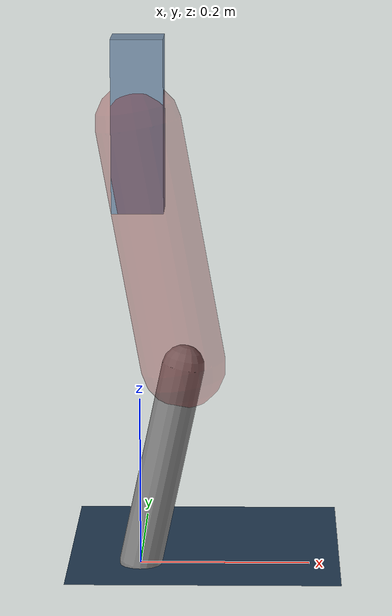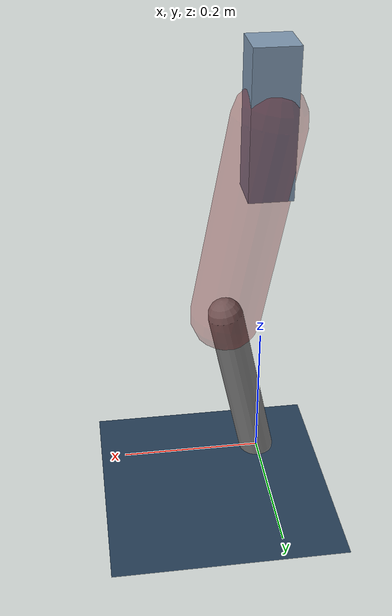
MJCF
<mujoco model="Hopper2D">
	<compiler inertiafromgeom="true" angle="radian" />
	<option timestep="0.001" integrator="implicit" cone="elliptic" solver="Newton" tolerance="1e-10" />

	<default>
		<geom contype="1" conaffinity="1" condim="3" friction="2 0.005 0.0001" solref="0.005 1" />
		<joint limited="true" damping="0.1" />
	</default>

	<asset>
		<texture name="skybox" type="skybox" builtin="gradient" rgb1=".4 .6 .8" rgb2="0 0 0" width="800" height="800" />
		<texture name="grid" type="2d" builtin="checker" rgb1=".1 .2 .3" rgb2=".2 .3 .4" width="300" height="300" mark="edge" markrgb=".2 .3 .4" />
		<material name="ground" texture="grid" texrepeat="1 1" texuniform="true" reflectance="0.1" />
		<material name="leg" rgba="0.5 0.6 0.7 1" />
	</asset>

	<worldbody>

		<geom name="floor" type="plane" size="5 5 0.25" material="ground" />

		<light directional="false" diffuse="0.8 0.8 0.8" specular="0.3 0.3 0.3" pos="0 0 2" dir="0 0 -1" />
		<light mode="targetbodycom" target="base" directional="false" diffuse="0.8 0.8 0.8" specular="0.3 0.3 0.3" pos="0 0 2" dir="0 0 -1" />

		<camera name="fixed" pos="0 -2 1" xyaxes="1 0 0 0 0 1" />
		<camera name="tracking" mode="trackcom" pos="0 -3 1" />

		<body name="root" pos="0 0 0.5254078611114368">
			<joint name="slide_x" type="slide" axis="1 0 0" range="-100 100" />
			<joint name="slide_z" type="slide" axis="0 0 1" range="0 10" />

			<body name="base" pos="0 0 0">
				<geom name="torso" type="box" size="0.03 0.03 0.1" mass="2.1950000000000003" material="leg" />

				<body name="link1" pos="0 0 0" euler="0 1.3929569395266541 0">
					<joint type="hinge" axis="0 -1 0" pos="0 0 0" name="hinge1" limited="true" range="-3.14 3.14" stiffness="0" damping="0.1" />
					<geom name="thigh" type="capsule" fromto="0 0 0 0.2900523906190481 0 0" size="0.05" rgba="0.5 0 0 0.3" mass="0.9619414546714299" />

					<body name="link2" pos="0.2900523906190481 0 0" euler="0 0.3885249215090953 0">
						<joint type="hinge" axis="0 -1 0" pos="0 0 0" name="hinge2" limited="true" range="-3.14 3.14" stiffness="0" damping="0.1" />
						<geom name="shank" type="capsule" fromto="0 0 0 0.2453554704923887 0 0" size="0.025" mass="0.43868437639391095" />

					</body>
				</body>
			</body>
		</body>
	</worldbody>

	<actuator>
		<motor name="torque1" joint="hinge1" ctrlrange="-89.38328608828132 89.38328608828132" ctrllimited="true" gear="1" />
		<motor name="torque2" joint="hinge2" ctrlrange="-88.77680147359473 88.77680147359473" ctrllimited="true" gear="1" />
	</actuator>
</mujoco>
